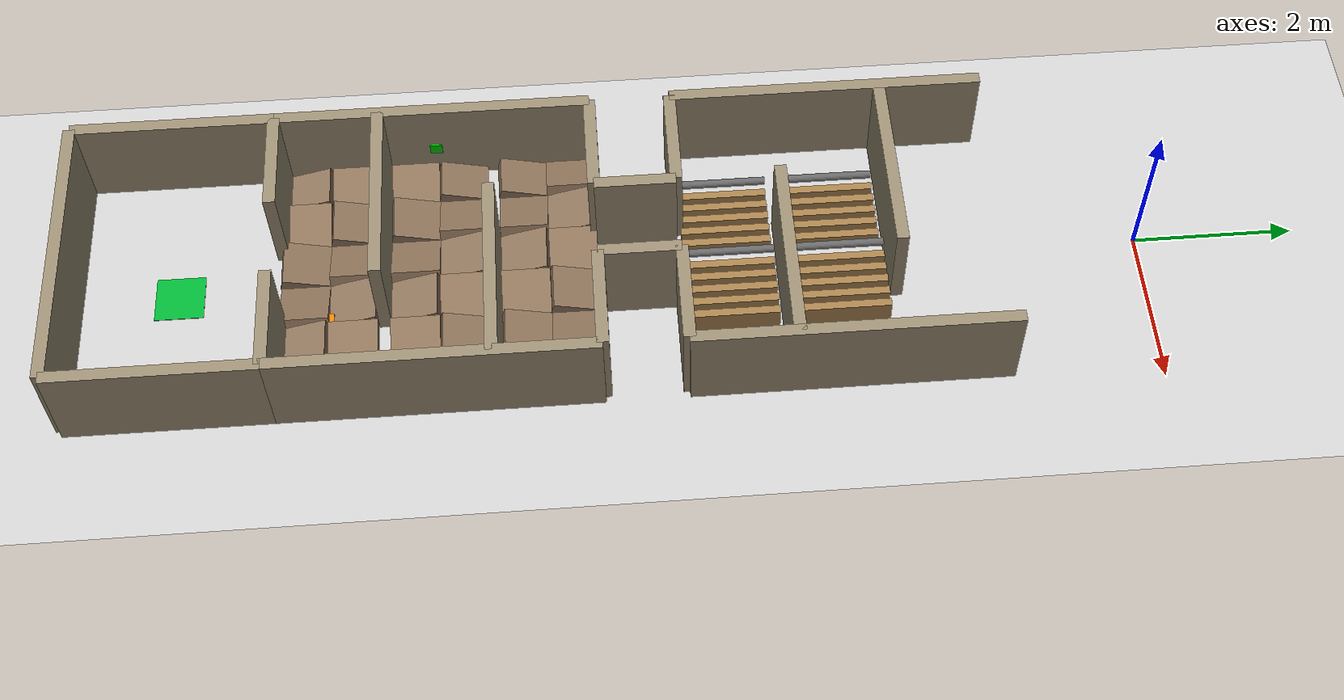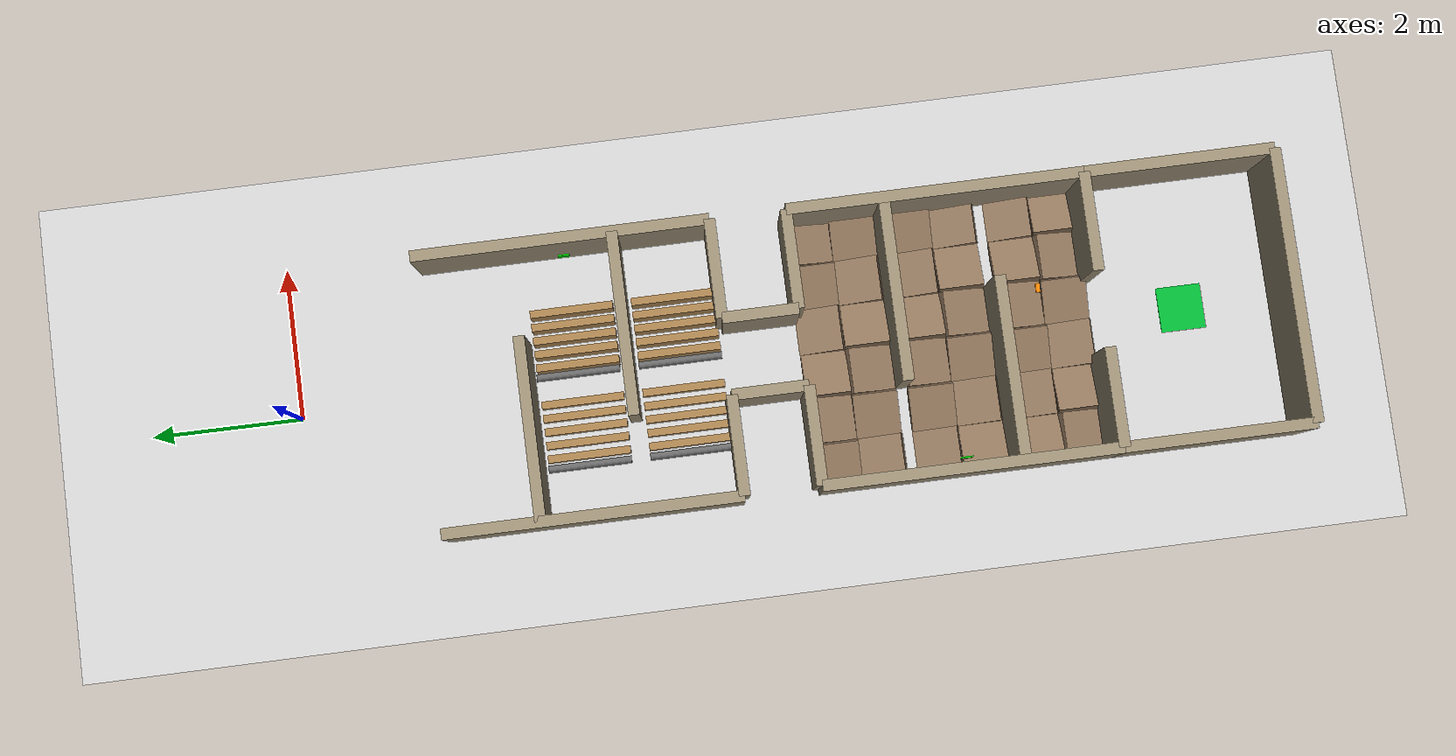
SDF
<sdf version="1.6">
 <world name="lrc_2026">
  <model name="ground_plane">
   <static>true</static>
   <link name="link">
    <collision name="collision">
     <geometry><plane><normal>0 0 1</normal><size>50 50</size></plane></geometry>
    </collision>
    <visual name="visual">
     <geometry><plane><normal>0 0 1</normal><size>50 50</size></plane></geometry>
     <material><ambient>0.8 0.8 0.8 1</ambient><diffuse>0.8 0.8 0.8 1</diffuse></material>
    </visual>
   </link>
  </model>
  <model name="LA_S_a">
   <static>true</static>
   <pose>-1.1500 -10.6000 0.6000 0.0000 0.0000 0.0000</pose>
   <link name="link">
    <collision name="col"><geometry><box><size>1.3000 0.1500 1.2000</size></box></geometry></collision>
    <visual name="vis">
     <geometry><box><size>1.3000 0.1500 1.2000</size></box></geometry>
     <material><ambient>0.6 0.55 0.45 1.0</ambient><diffuse>0.6 0.55 0.45 1.0</diffuse></material>
    </visual>
   </link>
  </model>
  <model name="LA_S_b">
   <static>true</static>
   <pose>1.1500 -10.6000 0.6000 0.0000 0.0000 0.0000</pose>
   <link name="link">
    <collision name="col"><geometry><box><size>1.3000 0.1500 1.2000</size></box></geometry></collision>
    <visual name="vis">
     <geometry><box><size>1.3000 0.1500 1.2000</size></box></geometry>
     <material><ambient>0.6 0.55 0.45 1.0</ambient><diffuse>0.6 0.55 0.45 1.0</diffuse></material>
    </visual>
   </link>
  </model>
  <model name="LA_N_a">
   <static>true</static>
   <pose>-1.1500 -6.7000 0.6000 0.0000 0.0000 0.0000</pose>
   <link name="link">
    <collision name="col"><geometry><box><size>1.3000 0.1500 1.2000</size></box></geometry></collision>
    <visual name="vis">
     <geometry><box><size>1.3000 0.1500 1.2000</size></box></geometry>
     <material><ambient>0.6 0.55 0.45 1.0</ambient><diffuse>0.6 0.55 0.45 1.0</diffuse></material>
    </visual>
   </link>
  </model>
  <model name="LA_N_b">
   <static>true</static>
   <pose>1.1500 -6.7000 0.6000 0.0000 0.0000 0.0000</pose>
   <link name="link">
    <collision name="col"><geometry><box><size>1.3000 0.1500 1.2000</size></box></geometry></collision>
    <visual name="vis">
     <geometry><box><size>1.3000 0.1500 1.2000</size></box></geometry>
     <material><ambient>0.6 0.55 0.45 1.0</ambient><diffuse>0.6 0.55 0.45 1.0</diffuse></material>
    </visual>
   </link>
  </model>
  <model name="LA_W">
   <static>true</static>
   <pose>-1.8000 -8.6500 0.6000 0.0000 0.0000 0.0000</pose>
   <link name="link">
    <collision name="col"><geometry><box><size>0.1500 3.9000 1.2000</size></box></geometry></collision>
    <visual name="vis">
     <geometry><box><size>0.1500 3.9000 1.2000</size></box></geometry>
     <material><ambient>0.6 0.55 0.45 1.0</ambient><diffuse>0.6 0.55 0.45 1.0</diffuse></material>
    </visual>
   </link>
  </model>
  <model name="LA_E">
   <static>true</static>
   <pose>1.8000 -8.6500 0.6000 0.0000 0.0000 0.0000</pose>
   <link name="link">
    <collision name="col"><geometry><box><size>0.1500 3.9000 1.2000</size></box></geometry></collision>
    <visual name="vis">
     <geometry><box><size>0.1500 3.9000 1.2000</size></box></geometry>
     <material><ambient>0.6 0.55 0.45 1.0</ambient><diffuse>0.6 0.55 0.45 1.0</diffuse></material>
    </visual>
   </link>
  </model>
  <model name="LA_d0">
   <static>true</static>
   <pose>-0.6000 -9.3250 0.6000 0.0000 0.0000 0.0000</pose>
   <link name="link">
    <collision name="col"><geometry><box><size>2.4000 0.1500 1.2000</size></box></geometry></collision>
    <visual name="vis">
     <geometry><box><size>2.4000 0.1500 1.2000</size></box></geometry>
     <material><ambient>0.6 0.55 0.45 1.0</ambient><diffuse>0.6 0.55 0.45 1.0</diffuse></material>
    </visual>
   </link>
  </model>
  <model name="LA_d1">
   <static>true</static>
   <pose>0.6000 -7.9750 0.6000 0.0000 0.0000 0.0000</pose>
   <link name="link">
    <collision name="col"><geometry><box><size>2.4000 0.1500 1.2000</size></box></geometry></collision>
    <visual name="vis">
     <geometry><box><size>2.4000 0.1500 1.2000</size></box></geometry>
     <material><ambient>0.6 0.55 0.45 1.0</ambient><diffuse>0.6 0.55 0.45 1.0</diffuse></material>
    </visual>
   </link>
  </model>
  <model name="ramp_0_0_0">
   <static>true</static>
   <pose>-1.5000 -10.3000 0.0800 0.2618 0 0</pose>
   <link name="link">
    <collision name="col"><geometry><box><size>0.6000 0.6000 0.1600</size></box></geometry></collision>
    <visual name="vis">
     <geometry><box><size>0.6000 0.6000 0.1600</size></box></geometry>
     <material><ambient>0.55 0.45 0.35 1.0</ambient><diffuse>0.55 0.45 0.35 1.0</diffuse></material>
    </visual>
   </link>
  </model>
  <model name="ramp_0_0_1">
   <static>true</static>
   <pose>-0.9000 -10.3000 0.0800 0 0.2618 0</pose>
   <link name="link">
    <collision name="col"><geometry><box><size>0.6000 0.6000 0.1600</size></box></geometry></collision>
    <visual name="vis">
     <geometry><box><size>0.6000 0.6000 0.1600</size></box></geometry>
     <material><ambient>0.55 0.45 0.35 1.0</ambient><diffuse>0.55 0.45 0.35 1.0</diffuse></material>
    </visual>
   </link>
  </model>
  <model name="ramp_0_0_2">
   <static>true</static>
   <pose>-0.3000 -10.3000 0.0800 -0.2618 0 0</pose>
   <link name="link">
    <collision name="col"><geometry><box><size>0.6000 0.6000 0.1600</size></box></geometry></collision>
    <visual name="vis">
     <geometry><box><size>0.6000 0.6000 0.1600</size></box></geometry>
     <material><ambient>0.55 0.45 0.35 1.0</ambient><diffuse>0.55 0.45 0.35 1.0</diffuse></material>
    </visual>
   </link>
  </model>
  <model name="ramp_0_0_3">
   <static>true</static>
   <pose>0.3000 -10.3000 0.0800 0 -0.2618 0</pose>
   <link name="link">
    <collision name="col"><geometry><box><size>0.6000 0.6000 0.1600</size></box></geometry></collision>
    <visual name="vis">
     <geometry><box><size>0.6000 0.6000 0.1600</size></box></geometry>
     <material><ambient>0.55 0.45 0.35 1.0</ambient><diffuse>0.55 0.45 0.35 1.0</diffuse></material>
    </visual>
   </link>
  </model>
  <model name="ramp_0_0_4">
   <static>true</static>
   <pose>0.9000 -10.3000 0.0800 0.2618 0 0</pose>
   <link name="link">
    <collision name="col"><geometry><box><size>0.6000 0.6000 0.1600</size></box></geometry></collision>
    <visual name="vis">
     <geometry><box><size>0.6000 0.6000 0.1600</size></box></geometry>
     <material><ambient>0.55 0.45 0.35 1.0</ambient><diffuse>0.55 0.45 0.35 1.0</diffuse></material>
    </visual>
   </link>
  </model>
  <model name="ramp_0_0_5">
   <static>true</static>
   <pose>1.5000 -10.3000 0.0800 0 0.2618 0</pose>
   <link name="link">
    <collision name="col"><geometry><box><size>0.6000 0.6000 0.1600</size></box></geometry></collision>
    <visual name="vis">
     <geometry><box><size>0.6000 0.6000 0.1600</size></box></geometry>
     <material><ambient>0.55 0.45 0.35 1.0</ambient><diffuse>0.55 0.45 0.35 1.0</diffuse></material>
    </visual>
   </link>
  </model>
  <model name="ramp_0_1_0">
   <static>true</static>
   <pose>-1.5000 -9.7000 0.0800 0 0.2618 0</pose>
   <link name="link">
    <collision name="col"><geometry><box><size>0.6000 0.6000 0.1600</size></box></geometry></collision>
    <visual name="vis">
     <geometry><box><size>0.6000 0.6000 0.1600</size></box></geometry>
     <material><ambient>0.55 0.45 0.35 1.0</ambient><diffuse>0.55 0.45 0.35 1.0</diffuse></material>
    </visual>
   </link>
  </model>
  <model name="ramp_0_1_1">
   <static>true</static>
   <pose>-0.9000 -9.7000 0.0800 -0.2618 0 0</pose>
   <link name="link">
    <collision name="col"><geometry><box><size>0.6000 0.6000 0.1600</size></box></geometry></collision>
    <visual name="vis">
     <geometry><box><size>0.6000 0.6000 0.1600</size></box></geometry>
     <material><ambient>0.55 0.45 0.35 1.0</ambient><diffuse>0.55 0.45 0.35 1.0</diffuse></material>
    </visual>
   </link>
  </model>
  <model name="ramp_0_1_2">
   <static>true</static>
   <pose>-0.3000 -9.7000 0.0800 0 -0.2618 0</pose>
   <link name="link">
    <collision name="col"><geometry><box><size>0.6000 0.6000 0.1600</size></box></geometry></collision>
    <visual name="vis">
     <geometry><box><size>0.6000 0.6000 0.1600</size></box></geometry>
     <material><ambient>0.55 0.45 0.35 1.0</ambient><diffuse>0.55 0.45 0.35 1.0</diffuse></material>
    </visual>
   </link>
  </model>
  <model name="ramp_0_1_3">
   <static>true</static>
   <pose>0.3000 -9.7000 0.0800 0.2618 0 0</pose>
   <link name="link">
    <collision name="col"><geometry><box><size>0.6000 0.6000 0.1600</size></box></geometry></collision>
    <visual name="vis">
     <geometry><box><size>0.6000 0.6000 0.1600</size></box></geometry>
     <material><ambient>0.55 0.45 0.35 1.0</ambient><diffuse>0.55 0.45 0.35 1.0</diffuse></material>
    </visual>
   </link>
  </model>
  <model name="ramp_0_1_4">
   <static>true</static>
   <pose>0.9000 -9.7000 0.0800 0 0.2618 0</pose>
   <link name="link">
    <collision name="col"><geometry><box><size>0.6000 0.6000 0.1600</size></box></geometry></collision>
    <visual name="vis">
     <geometry><box><size>0.6000 0.6000 0.1600</size></box></geometry>
     <material><ambient>0.55 0.45 0.35 1.0</ambient><diffuse>0.55 0.45 0.35 1.0</diffuse></material>
    </visual>
   </link>
  </model>
  <model name="ramp_0_1_5">
   <static>true</static>
   <pose>1.5000 -9.7000 0.0800 -0.2618 0 0</pose>
   <link name="link">
    <collision name="col"><geometry><box><size>0.6000 0.6000 0.1600</size></box></geometry></collision>
    <visual name="vis">
     <geometry><box><size>0.6000 0.6000 0.1600</size></box></geometry>
     <material><ambient>0.55 0.45 0.35 1.0</ambient><diffuse>0.55 0.45 0.35 1.0</diffuse></material>
    </visual>
   </link>
  </model>
  <model name="ramp_1_0_0">
   <static>true</static>
   <pose>-1.5000 -8.9500 0.0800 0 0.2618 0</pose>
   <link name="link">
    <collision name="col"><geometry><box><size>0.6000 0.6000 0.1600</size></box></geometry></collision>
    <visual name="vis">
     <geometry><box><size>0.6000 0.6000 0.1600</size></box></geometry>
     <material><ambient>0.55 0.45 0.35 1.0</ambient><diffuse>0.55 0.45 0.35 1.0</diffuse></material>
    </visual>
   </link>
  </model>
  <model name="ramp_1_0_1">
   <static>true</static>
   <pose>-0.9000 -8.9500 0.0800 -0.2618 0 0</pose>
   <link name="link">
    <collision name="col"><geometry><box><size>0.6000 0.6000 0.1600</size></box></geometry></collision>
    <visual name="vis">
     <geometry><box><size>0.6000 0.6000 0.1600</size></box></geometry>
     <material><ambient>0.55 0.45 0.35 1.0</ambient><diffuse>0.55 0.45 0.35 1.0</diffuse></material>
    </visual>
   </link>
  </model>
  <model name="ramp_1_0_2">
   <static>true</static>
   <pose>-0.3000 -8.9500 0.0800 0 -0.2618 0</pose>
   <link name="link">
    <collision name="col"><geometry><box><size>0.6000 0.6000 0.1600</size></box></geometry></collision>
    <visual name="vis">
     <geometry><box><size>0.6000 0.6000 0.1600</size></box></geometry>
     <material><ambient>0.55 0.45 0.35 1.0</ambient><diffuse>0.55 0.45 0.35 1.0</diffuse></material>
    </visual>
   </link>
  </model>
  <model name="ramp_1_0_3">
   <static>true</static>
   <pose>0.3000 -8.9500 0.0800 0.2618 0 0</pose>
   <link name="link">
    <collision name="col"><geometry><box><size>0.6000 0.6000 0.1600</size></box></geometry></collision>
    <visual name="vis">
     <geometry><box><size>0.6000 0.6000 0.1600</size></box></geometry>
     <material><ambient>0.55 0.45 0.35 1.0</ambient><diffuse>0.55 0.45 0.35 1.0</diffuse></material>
    </visual>
   </link>
  </model>
  <model name="ramp_1_0_4">
   <static>true</static>
   <pose>0.9000 -8.9500 0.0800 0 0.2618 0</pose>
   <link name="link">
    <collision name="col"><geometry><box><size>0.6000 0.6000 0.1600</size></box></geometry></collision>
    <visual name="vis">
     <geometry><box><size>0.6000 0.6000 0.1600</size></box></geometry>
     <material><ambient>0.55 0.45 0.35 1.0</ambient><diffuse>0.55 0.45 0.35 1.0</diffuse></material>
    </visual>
   </link>
  </model>
  <model name="ramp_1_0_5">
   <static>true</static>
   <pose>1.5000 -8.9500 0.0800 -0.2618 0 0</pose>
   <link name="link">
    <collision name="col"><geometry><box><size>0.6000 0.6000 0.1600</size></box></geometry></collision>
    <visual name="vis">
     <geometry><box><size>0.6000 0.6000 0.1600</size></box></geometry>
     <material><ambient>0.55 0.45 0.35 1.0</ambient><diffuse>0.55 0.45 0.35 1.0</diffuse></material>
    </visual>
   </link>
  </model>
  <model name="ramp_1_1_0">
   <static>true</static>
   <pose>-1.5000 -8.3500 0.0800 -0.2618 0 0</pose>
   <link name="link">
    <collision name="col"><geometry><box><size>0.6000 0.6000 0.1600</size></box></geometry></collision>
    <visual name="vis">
     <geometry><box><size>0.6000 0.6000 0.1600</size></box></geometry>
     <material><ambient>0.55 0.45 0.35 1.0</ambient><diffuse>0.55 0.45 0.35 1.0</diffuse></material>
    </visual>
   </link>
  </model>
  <model name="ramp_1_1_1">
   <static>true</static>
   <pose>-0.9000 -8.3500 0.0800 0 -0.2618 0</pose>
   <link name="link">
    <collision name="col"><geometry><box><size>0.6000 0.6000 0.1600</size></box></geometry></collision>
    <visual name="vis">
     <geometry><box><size>0.6000 0.6000 0.1600</size></box></geometry>
     <material><ambient>0.55 0.45 0.35 1.0</ambient><diffuse>0.55 0.45 0.35 1.0</diffuse></material>
    </visual>
   </link>
  </model>
  <model name="ramp_1_1_2">
   <static>true</static>
   <pose>-0.3000 -8.3500 0.0800 0.2618 0 0</pose>
   <link name="link">
    <collision name="col"><geometry><box><size>0.6000 0.6000 0.1600</size></box></geometry></collision>
    <visual name="vis">
     <geometry><box><size>0.6000 0.6000 0.1600</size></box></geometry>
     <material><ambient>0.55 0.45 0.35 1.0</ambient><diffuse>0.55 0.45 0.35 1.0</diffuse></material>
    </visual>
   </link>
  </model>
  <model name="ramp_1_1_3">
   <static>true</static>
   <pose>0.3000 -8.3500 0.0800 0 0.2618 0</pose>
   <link name="link">
    <collision name="col"><geometry><box><size>0.6000 0.6000 0.1600</size></box></geometry></collision>
    <visual name="vis">
     <geometry><box><size>0.6000 0.6000 0.1600</size></box></geometry>
     <material><ambient>0.55 0.45 0.35 1.0</ambient><diffuse>0.55 0.45 0.35 1.0</diffuse></material>
    </visual>
   </link>
  </model>
  <model name="ramp_1_1_4">
   <static>true</static>
   <pose>0.9000 -8.3500 0.0800 -0.2618 0 0</pose>
   <link name="link">
    <collision name="col"><geometry><box><size>0.6000 0.6000 0.1600</size></box></geometry></collision>
    <visual name="vis">
     <geometry><box><size>0.6000 0.6000 0.1600</size></box></geometry>
     <material><ambient>0.55 0.45 0.35 1.0</ambient><diffuse>0.55 0.45 0.35 1.0</diffuse></material>
    </visual>
   </link>
  </model>
  <model name="ramp_1_1_5">
   <static>true</static>
   <pose>1.5000 -8.3500 0.0800 0 -0.2618 0</pose>
   <link name="link">
    <collision name="col"><geometry><box><size>0.6000 0.6000 0.1600</size></box></geometry></collision>
    <visual name="vis">
     <geometry><box><size>0.6000 0.6000 0.1600</size></box></geometry>
     <material><ambient>0.55 0.45 0.35 1.0</ambient><diffuse>0.55 0.45 0.35 1.0</diffuse></material>
    </visual>
   </link>
  </model>
  <model name="ramp_2_0_0">
   <static>true</static>
   <pose>-1.5000 -7.6000 0.0800 -0.2618 0 0</pose>
   <link name="link">
    <collision name="col"><geometry><box><size>0.6000 0.6000 0.1600</size></box></geometry></collision>
    <visual name="vis">
     <geometry><box><size>0.6000 0.6000 0.1600</size></box></geometry>
     <material><ambient>0.55 0.45 0.35 1.0</ambient><diffuse>0.55 0.45 0.35 1.0</diffuse></material>
    </visual>
   </link>
  </model>
  <model name="ramp_2_0_1">
   <static>true</static>
   <pose>-0.9000 -7.6000 0.0800 0 -0.2618 0</pose>
   <link name="link">
    <collision name="col"><geometry><box><size>0.6000 0.6000 0.1600</size></box></geometry></collision>
    <visual name="vis">
     <geometry><box><size>0.6000 0.6000 0.1600</size></box></geometry>
     <material><ambient>0.55 0.45 0.35 1.0</ambient><diffuse>0.55 0.45 0.35 1.0</diffuse></material>
    </visual>
   </link>
  </model>
  <model name="ramp_2_0_2">
   <static>true</static>
   <pose>-0.3000 -7.6000 0.0800 0.2618 0 0</pose>
   <link name="link">
    <collision name="col"><geometry><box><size>0.6000 0.6000 0.1600</size></box></geometry></collision>
    <visual name="vis">
     <geometry><box><size>0.6000 0.6000 0.1600</size></box></geometry>
     <material><ambient>0.55 0.45 0.35 1.0</ambient><diffuse>0.55 0.45 0.35 1.0</diffuse></material>
    </visual>
   </link>
  </model>
  <model name="ramp_2_0_3">
   <static>true</static>
   <pose>0.3000 -7.6000 0.0800 0 0.2618 0</pose>
   <link name="link">
    <collision name="col"><geometry><box><size>0.6000 0.6000 0.1600</size></box></geometry></collision>
    <visual name="vis">
     <geometry><box><size>0.6000 0.6000 0.1600</size></box></geometry>
     <material><ambient>0.55 0.45 0.35 1.0</ambient><diffuse>0.55 0.45 0.35 1.0</diffuse></material>
    </visual>
   </link>
  </model>
  <model name="ramp_2_0_4">
   <static>true</static>
   <pose>0.9000 -7.6000 0.0800 -0.2618 0 0</pose>
   <link name="link">
    <collision name="col"><geometry><box><size>0.6000 0.6000 0.1600</size></box></geometry></collision>
    <visual name="vis">
     <geometry><box><size>0.6000 0.6000 0.1600</size></box></geometry>
     <material><ambient>0.55 0.45 0.35 1.0</ambient><diffuse>0.55 0.45 0.35 1.0</diffuse></material>
    </visual>
   </link>
  </model>
  <model name="ramp_2_0_5">
   <static>true</static>
   <pose>1.5000 -7.6000 0.0800 0 -0.2618 0</pose>
   <link name="link">
    <collision name="col"><geometry><box><size>0.6000 0.6000 0.1600</size></box></geometry></collision>
    <visual name="vis">
     <geometry><box><size>0.6000 0.6000 0.1600</size></box></geometry>
     <material><ambient>0.55 0.45 0.35 1.0</ambient><diffuse>0.55 0.45 0.35 1.0</diffuse></material>
    </visual>
   </link>
  </model>
  <model name="ramp_2_1_0">
   <static>true</static>
   <pose>-1.5000 -7.0000 0.0800 0 -0.2618 0</pose>
   <link name="link">
    <collision name="col"><geometry><box><size>0.6000 0.6000 0.1600</size></box></geometry></collision>
    <visual name="vis">
     <geometry><box><size>0.6000 0.6000 0.1600</size></box></geometry>
     <material><ambient>0.55 0.45 0.35 1.0</ambient><diffuse>0.55 0.45 0.35 1.0</diffuse></material>
    </visual>
   </link>
  </model>
  <model name="ramp_2_1_1">
   <static>true</static>
   <pose>-0.9000 -7.0000 0.0800 0.2618 0 0</pose>
   <link name="link">
    <collision name="col"><geometry><box><size>0.6000 0.6000 0.1600</size></box></geometry></collision>
    <visual name="vis">
     <geometry><box><size>0.6000 0.6000 0.1600</size></box></geometry>
     <material><ambient>0.55 0.45 0.35 1.0</ambient><diffuse>0.55 0.45 0.35 1.0</diffuse></material>
    </visual>
   </link>
  </model>
  <model name="ramp_2_1_2">
   <static>true</static>
   <pose>-0.3000 -7.0000 0.0800 0 0.2618 0</pose>
   <link name="link">
    <collision name="col"><geometry><box><size>0.6000 0.6000 0.1600</size></box></geometry></collision>
    <visual name="vis">
     <geometry><box><size>0.6000 0.6000 0.1600</size></box></geometry>
     <material><ambient>0.55 0.45 0.35 1.0</ambient><diffuse>0.55 0.45 0.35 1.0</diffuse></material>
    </visual>
   </link>
  </model>
  <model name="ramp_2_1_3">
   <static>true</static>
   <pose>0.3000 -7.0000 0.0800 -0.2618 0 0</pose>
   <link name="link">
    <collision name="col"><geometry><box><size>0.6000 0.6000 0.1600</size></box></geometry></collision>
    <visual name="vis">
     <geometry><box><size>0.6000 0.6000 0.1600</size></box></geometry>
     <material><ambient>0.55 0.45 0.35 1.0</ambient><diffuse>0.55 0.45 0.35 1.0</diffuse></material>
    </visual>
   </link>
  </model>
  <model name="ramp_2_1_4">
   <static>true</static>
   <pose>0.9000 -7.0000 0.0800 0 -0.2618 0</pose>
   <link name="link">
    <collision name="col"><geometry><box><size>0.6000 0.6000 0.1600</size></box></geometry></collision>
    <visual name="vis">
     <geometry><box><size>0.6000 0.6000 0.1600</size></box></geometry>
     <material><ambient>0.55 0.45 0.35 1.0</ambient><diffuse>0.55 0.45 0.35 1.0</diffuse></material>
    </visual>
   </link>
  </model>
  <model name="ramp_2_1_5">
   <static>true</static>
   <pose>1.5000 -7.0000 0.0800 0.2618 0 0</pose>
   <link name="link">
    <collision name="col"><geometry><box><size>0.6000 0.6000 0.1600</size></box></geometry></collision>
    <visual name="vis">
     <geometry><box><size>0.6000 0.6000 0.1600</size></box></geometry>
     <material><ambient>0.55 0.45 0.35 1.0</ambient><diffuse>0.55 0.45 0.35 1.0</diffuse></material>
    </visual>
   </link>
  </model>
  <model name="qr_A">
   <static>true</static>
   <pose>-1.6500 -8.6500 0.6000 0.0000 0.0000 0.0000</pose>
   <link name="link">
    <collision name="col"><geometry><box><size>0.0200 0.1500 0.1500</size></box></geometry></collision>
    <visual name="vis">
     <geometry><box><size>0.0200 0.1500 0.1500</size></box></geometry>
     <material><ambient>0.0 0.8 0.0 1.0</ambient><diffuse>0.0 0.8 0.0 1.0</diffuse></material>
    </visual>
   </link>
  </model>
  <model name="haz_A">
   <static>true</static>
   <pose>0.5000 -10.0000 0.0600 0.0000 0.0000 0.0000</pose>
   <link name="link">
    <collision name="col"><geometry><box><size>0.1200 0.1200 0.1200</size></box></geometry></collision>
    <visual name="vis">
     <geometry><box><size>0.1200 0.1200 0.1200</size></box></geometry>
     <material><ambient>1.0 0.5 0.0 1.0</ambient><diffuse>1.0 0.5 0.0 1.0</diffuse></material>
    </visual>
   </link>
  </model>
  <model name="LB_S_a">
   <static>true</static>
   <pose>-1.1500 -5.7000 0.6000 0.0000 0.0000 0.0000</pose>
   <link name="link">
    <collision name="col"><geometry><box><size>1.3000 0.1500 1.2000</size></box></geometry></collision>
    <visual name="vis">
     <geometry><box><size>1.3000 0.1500 1.2000</size></box></geometry>
     <material><ambient>0.6 0.55 0.45 1.0</ambient><diffuse>0.6 0.55 0.45 1.0</diffuse></material>
    </visual>
   </link>
  </model>
  <model name="LB_S_b">
   <static>true</static>
   <pose>1.1500 -5.7000 0.6000 0.0000 0.0000 0.0000</pose>
   <link name="link">
    <collision name="col"><geometry><box><size>1.3000 0.1500 1.2000</size></box></geometry></collision>
    <visual name="vis">
     <geometry><box><size>1.3000 0.1500 1.2000</size></box></geometry>
     <material><ambient>0.6 0.55 0.45 1.0</ambient><diffuse>0.6 0.55 0.45 1.0</diffuse></material>
    </visual>
   </link>
  </model>
  <model name="LB_W">
   <static>true</static>
   <pose>-1.8000 -3.7500 0.6000 0.0000 0.0000 0.0000</pose>
   <link name="link">
    <collision name="col"><geometry><box><size>0.1500 3.9000 1.2000</size></box></geometry></collision>
    <visual name="vis">
     <geometry><box><size>0.1500 3.9000 1.2000</size></box></geometry>
     <material><ambient>0.6 0.55 0.45 1.0</ambient><diffuse>0.6 0.55 0.45 1.0</diffuse></material>
    </visual>
   </link>
  </model>
  <model name="LB_E">
   <static>true</static>
   <pose>1.8000 -3.7500 0.6000 0.0000 0.0000 0.0000</pose>
   <link name="link">
    <collision name="col"><geometry><box><size>0.1500 3.9000 1.2000</size></box></geometry></collision>
    <visual name="vis">
     <geometry><box><size>0.1500 3.9000 1.2000</size></box></geometry>
     <material><ambient>0.6 0.55 0.45 1.0</ambient><diffuse>0.6 0.55 0.45 1.0</diffuse></material>
    </visual>
   </link>
  </model>
  <model name="LB_d0">
   <static>true</static>
   <pose>0.6000 -4.4250 0.6000 0.0000 0.0000 0.0000</pose>
   <link name="link">
    <collision name="col"><geometry><box><size>2.4000 0.1500 1.2000</size></box></geometry></collision>
    <visual name="vis">
     <geometry><box><size>2.4000 0.1500 1.2000</size></box></geometry>
     <material><ambient>0.6 0.55 0.45 1.0</ambient><diffuse>0.6 0.55 0.45 1.0</diffuse></material>
    </visual>
   </link>
  </model>
  <model name="LB_d1">
   <static>true</static>
   <pose>-0.6000 -3.0750 0.6000 0.0000 0.0000 0.0000</pose>
   <link name="link">
    <collision name="col"><geometry><box><size>2.4000 0.1500 1.2000</size></box></geometry></collision>
    <visual name="vis">
     <geometry><box><size>2.4000 0.1500 1.2000</size></box></geometry>
     <material><ambient>0.6 0.55 0.45 1.0</ambient><diffuse>0.6 0.55 0.45 1.0</diffuse></material>
    </visual>
   </link>
  </model>
  <model name="plt_0_0_0">
   <static>true</static>
   <pose>-0.9600 -5.1000 0.1000 0.0000 0.0000 0.0000</pose>
   <link name="link">
    <collision name="col"><geometry><box><size>0.1000 1.1000 0.2000</size></box></geometry></collision>
    <visual name="vis">
     <geometry><box><size>0.1000 1.1000 0.2000</size></box></geometry>
     <material><ambient>0.65 0.5 0.3 1.0</ambient><diffuse>0.65 0.5 0.3 1.0</diffuse></material>
    </visual>
   </link>
  </model>
  <model name="plt_0_0_1">
   <static>true</static>
   <pose>-0.7800 -5.1000 0.1000 0.0000 0.0000 0.0000</pose>
   <link name="link">
    <collision name="col"><geometry><box><size>0.1000 1.1000 0.2000</size></box></geometry></collision>
    <visual name="vis">
     <geometry><box><size>0.1000 1.1000 0.2000</size></box></geometry>
     <material><ambient>0.65 0.5 0.3 1.0</ambient><diffuse>0.65 0.5 0.3 1.0</diffuse></material>
    </visual>
   </link>
  </model>
  <model name="plt_0_0_2">
   <static>true</static>
   <pose>-0.6000 -5.1000 0.1000 0.0000 0.0000 0.0000</pose>
   <link name="link">
    <collision name="col"><geometry><box><size>0.1000 1.1000 0.2000</size></box></geometry></collision>
    <visual name="vis">
     <geometry><box><size>0.1000 1.1000 0.2000</size></box></geometry>
     <material><ambient>0.65 0.5 0.3 1.0</ambient><diffuse>0.65 0.5 0.3 1.0</diffuse></material>
    </visual>
   </link>
  </model>
  <model name="plt_0_0_3">
   <static>true</static>
   <pose>-0.4200 -5.1000 0.1000 0.0000 0.0000 0.0000</pose>
   <link name="link">
    <collision name="col"><geometry><box><size>0.1000 1.1000 0.2000</size></box></geometry></collision>
    <visual name="vis">
     <geometry><box><size>0.1000 1.1000 0.2000</size></box></geometry>
     <material><ambient>0.65 0.5 0.3 1.0</ambient><diffuse>0.65 0.5 0.3 1.0</diffuse></material>
    </visual>
   </link>
  </model>
  <model name="plt_0_0_4">
   <static>true</static>
   <pose>-0.2400 -5.1000 0.1000 0.0000 0.0000 0.0000</pose>
   <link name="link">
    <collision name="col"><geometry><box><size>0.1000 1.1000 0.2000</size></box></geometry></collision>
    <visual name="vis">
     <geometry><box><size>0.1000 1.1000 0.2000</size></box></geometry>
     <material><ambient>0.65 0.5 0.3 1.0</ambient><diffuse>0.65 0.5 0.3 1.0</diffuse></material>
    </visual>
   </link>
  </model>
  <model name="pipe_0_0">
   <static>true</static>
   <pose>-1.1000 -5.1000 0.2500 1.5708 0 0</pose>
   <link name="link">
    <collision name="col">
     <geometry><cylinder><radius>0.05</radius><length>1.1</length></cylinder></geometry>
    </collision>
    <visual name="vis">
     <geometry><cylinder><radius>0.05</radius><length>1.1</length></cylinder></geometry>
     <material><ambient>0.4 0.4 0.4 1.0</ambient><diffuse>0.4 0.4 0.4 1.0</diffuse></material>
    </visual>
   </link>
  </model>
  <model name="plt_0_1_0">
   <static>true</static>
   <pose>0.2400 -5.1000 0.2000 0.0000 0.0000 0.0000</pose>
   <link name="link">
    <collision name="col"><geometry><box><size>0.1000 1.1000 0.4000</size></box></geometry></collision>
    <visual name="vis">
     <geometry><box><size>0.1000 1.1000 0.4000</size></box></geometry>
     <material><ambient>0.65 0.5 0.3 1.0</ambient><diffuse>0.65 0.5 0.3 1.0</diffuse></material>
    </visual>
   </link>
  </model>
  <model name="plt_0_1_1">
   <static>true</static>
   <pose>0.4200 -5.1000 0.2000 0.0000 0.0000 0.0000</pose>
   <link name="link">
    <collision name="col"><geometry><box><size>0.1000 1.1000 0.4000</size></box></geometry></collision>
    <visual name="vis">
     <geometry><box><size>0.1000 1.1000 0.4000</size></box></geometry>
     <material><ambient>0.65 0.5 0.3 1.0</ambient><diffuse>0.65 0.5 0.3 1.0</diffuse></material>
    </visual>
   </link>
  </model>
  <model name="plt_0_1_2">
   <static>true</static>
   <pose>0.6000 -5.1000 0.2000 0.0000 0.0000 0.0000</pose>
   <link name="link">
    <collision name="col"><geometry><box><size>0.1000 1.1000 0.4000</size></box></geometry></collision>
    <visual name="vis">
     <geometry><box><size>0.1000 1.1000 0.4000</size></box></geometry>
     <material><ambient>0.65 0.5 0.3 1.0</ambient><diffuse>0.65 0.5 0.3 1.0</diffuse></material>
    </visual>
   </link>
  </model>
  <model name="plt_0_1_3">
   <static>true</static>
   <pose>0.7800 -5.1000 0.2000 0.0000 0.0000 0.0000</pose>
   <link name="link">
    <collision name="col"><geometry><box><size>0.1000 1.1000 0.4000</size></box></geometry></collision>
    <visual name="vis">
     <geometry><box><size>0.1000 1.1000 0.4000</size></box></geometry>
     <material><ambient>0.65 0.5 0.3 1.0</ambient><diffuse>0.65 0.5 0.3 1.0</diffuse></material>
    </visual>
   </link>
  </model>
  <model name="plt_0_1_4">
   <static>true</static>
   <pose>0.9600 -5.1000 0.2000 0.0000 0.0000 0.0000</pose>
   <link name="link">
    <collision name="col"><geometry><box><size>0.1000 1.1000 0.4000</size></box></geometry></collision>
    <visual name="vis">
     <geometry><box><size>0.1000 1.1000 0.4000</size></box></geometry>
     <material><ambient>0.65 0.5 0.3 1.0</ambient><diffuse>0.65 0.5 0.3 1.0</diffuse></material>
    </visual>
   </link>
  </model>
  <model name="pipe_0_1">
   <static>true</static>
   <pose>0.1000 -5.1000 0.4500 1.5708 0 0</pose>
   <link name="link">
    <collision name="col">
     <geometry><cylinder><radius>0.05</radius><length>1.1</length></cylinder></geometry>
    </collision>
    <visual name="vis">
     <geometry><cylinder><radius>0.05</radius><length>1.1</length></cylinder></geometry>
     <material><ambient>0.4 0.4 0.4 1.0</ambient><diffuse>0.4 0.4 0.4 1.0</diffuse></material>
    </visual>
   </link>
  </model>
  <model name="plt_1_0_0">
   <static>true</static>
   <pose>-0.9600 -3.7500 0.1000 0.0000 0.0000 0.0000</pose>
   <link name="link">
    <collision name="col"><geometry><box><size>0.1000 1.1000 0.2000</size></box></geometry></collision>
    <visual name="vis">
     <geometry><box><size>0.1000 1.1000 0.2000</size></box></geometry>
     <material><ambient>0.65 0.5 0.3 1.0</ambient><diffuse>0.65 0.5 0.3 1.0</diffuse></material>
    </visual>
   </link>
  </model>
  <model name="plt_1_0_1">
   <static>true</static>
   <pose>-0.7800 -3.7500 0.1000 0.0000 0.0000 0.0000</pose>
   <link name="link">
    <collision name="col"><geometry><box><size>0.1000 1.1000 0.2000</size></box></geometry></collision>
    <visual name="vis">
     <geometry><box><size>0.1000 1.1000 0.2000</size></box></geometry>
     <material><ambient>0.65 0.5 0.3 1.0</ambient><diffuse>0.65 0.5 0.3 1.0</diffuse></material>
    </visual>
   </link>
  </model>
  <model name="plt_1_0_2">
   <static>true</static>
   <pose>-0.6000 -3.7500 0.1000 0.0000 0.0000 0.0000</pose>
   <link name="link">
    <collision name="col"><geometry><box><size>0.1000 1.1000 0.2000</size></box></geometry></collision>
    <visual name="vis">
     <geometry><box><size>0.1000 1.1000 0.2000</size></box></geometry>
     <material><ambient>0.65 0.5 0.3 1.0</ambient><diffuse>0.65 0.5 0.3 1.0</diffuse></material>
    </visual>
   </link>
  </model>
  <model name="plt_1_0_3">
   <static>true</static>
   <pose>-0.4200 -3.7500 0.1000 0.0000 0.0000 0.0000</pose>
   <link name="link">
    <collision name="col"><geometry><box><size>0.1000 1.1000 0.2000</size></box></geometry></collision>
    <visual name="vis">
     <geometry><box><size>0.1000 1.1000 0.2000</size></box></geometry>
     <material><ambient>0.65 0.5 0.3 1.0</ambient><diffuse>0.65 0.5 0.3 1.0</diffuse></material>
    </visual>
   </link>
  </model>
  <model name="plt_1_0_4">
   <static>true</static>
   <pose>-0.2400 -3.7500 0.1000 0.0000 0.0000 0.0000</pose>
   <link name="link">
    <collision name="col"><geometry><box><size>0.1000 1.1000 0.2000</size></box></geometry></collision>
    <visual name="vis">
     <geometry><box><size>0.1000 1.1000 0.2000</size></box></geometry>
     <material><ambient>0.65 0.5 0.3 1.0</ambient><diffuse>0.65 0.5 0.3 1.0</diffuse></material>
    </visual>
   </link>
  </model>
  <model name="pipe_1_0">
   <static>true</static>
   <pose>-1.1000 -3.7500 0.2500 1.5708 0 0</pose>
   <link name="link">
    <collision name="col">
     <geometry><cylinder><radius>0.05</radius><length>1.1</length></cylinder></geometry>
    </collision>
    <visual name="vis">
     <geometry><cylinder><radius>0.05</radius><length>1.1</length></cylinder></geometry>
     <material><ambient>0.4 0.4 0.4 1.0</ambient><diffuse>0.4 0.4 0.4 1.0</diffuse></material>
    </visual>
   </link>
  </model>
  <model name="plt_1_1_0">
   <static>true</static>
   <pose>0.2400 -3.7500 0.2000 0.0000 0.0000 0.0000</pose>
   <link name="link">
    <collision name="col"><geometry><box><size>0.1000 1.1000 0.4000</size></box></geometry></collision>
    <visual name="vis">
     <geometry><box><size>0.1000 1.1000 0.4000</size></box></geometry>
     <material><ambient>0.65 0.5 0.3 1.0</ambient><diffuse>0.65 0.5 0.3 1.0</diffuse></material>
    </visual>
   </link>
  </model>
  <model name="plt_1_1_1">
   <static>true</static>
   <pose>0.4200 -3.7500 0.2000 0.0000 0.0000 0.0000</pose>
   <link name="link">
    <collision name="col"><geometry><box><size>0.1000 1.1000 0.4000</size></box></geometry></collision>
    <visual name="vis">
     <geometry><box><size>0.1000 1.1000 0.4000</size></box></geometry>
     <material><ambient>0.65 0.5 0.3 1.0</ambient><diffuse>0.65 0.5 0.3 1.0</diffuse></material>
    </visual>
   </link>
  </model>
  <model name="plt_1_1_2">
   <static>true</static>
   <pose>0.6000 -3.7500 0.2000 0.0000 0.0000 0.0000</pose>
   <link name="link">
    <collision name="col"><geometry><box><size>0.1000 1.1000 0.4000</size></box></geometry></collision>
    <visual name="vis">
     <geometry><box><size>0.1000 1.1000 0.4000</size></box></geometry>
     <material><ambient>0.65 0.5 0.3 1.0</ambient><diffuse>0.65 0.5 0.3 1.0</diffuse></material>
    </visual>
   </link>
  </model>
  <model name="plt_1_1_3">
   <static>true</static>
   <pose>0.7800 -3.7500 0.2000 0.0000 0.0000 0.0000</pose>
   <link name="link">
    <collision name="col"><geometry><box><size>0.1000 1.1000 0.4000</size></box></geometry></collision>
    <visual name="vis">
     <geometry><box><size>0.1000 1.1000 0.4000</size></box></geometry>
     <material><ambient>0.65 0.5 0.3 1.0</ambient><diffuse>0.65 0.5 0.3 1.0</diffuse></material>
    </visual>
   </link>
  </model>
  <model name="plt_1_1_4">
   <static>true</static>
   <pose>0.9600 -3.7500 0.2000 0.0000 0.0000 0.0000</pose>
   <link name="link">
    <collision name="col"><geometry><box><size>0.1000 1.1000 0.4000</size></box></geometry></collision>
    <visual name="vis">
     <geometry><box><size>0.1000 1.1000 0.4000</size></box></geometry>
     <material><ambient>0.65 0.5 0.3 1.0</ambient><diffuse>0.65 0.5 0.3 1.0</diffuse></material>
    </visual>
   </link>
  </model>
  <model name="pipe_1_1">
   <static>true</static>
   <pose>0.1000 -3.7500 0.4500 1.5708 0 0</pose>
   <link name="link">
    <collision name="col">
     <geometry><cylinder><radius>0.05</radius><length>1.1</length></cylinder></geometry>
    </collision>
    <visual name="vis">
     <geometry><cylinder><radius>0.05</radius><length>1.1</length></cylinder></geometry>
     <material><ambient>0.4 0.4 0.4 1.0</ambient><diffuse>0.4 0.4 0.4 1.0</diffuse></material>
    </visual>
   </link>
  </model>
  <model name="qr_B">
   <static>true</static>
   <pose>1.6500 -3.7500 0.6000 0.0000 0.0000 0.0000</pose>
   <link name="link">
    <collision name="col"><geometry><box><size>0.0200 0.1500 0.1500</size></box></geometry></collision>
    <visual name="vis">
     <geometry><box><size>0.0200 0.1500 0.1500</size></box></geometry>
     <material><ambient>0.0 0.8 0.0 1.0</ambient><diffuse>0.0 0.8 0.0 1.0</diffuse></material>
    </visual>
   </link>
  </model>
  <model name="cor0_W">
   <static>true</static>
   <pose>-0.5000 -6.2000 0.6000 0.0000 0.0000 0.0000</pose>
   <link name="link">
    <collision name="col"><geometry><box><size>0.1500 1.0000 1.2000</size></box></geometry></collision>
    <visual name="vis">
     <geometry><box><size>0.1500 1.0000 1.2000</size></box></geometry>
     <material><ambient>0.6 0.55 0.45 1.0</ambient><diffuse>0.6 0.55 0.45 1.0</diffuse></material>
    </visual>
   </link>
  </model>
  <model name="cor0_E">
   <static>true</static>
   <pose>0.5000 -6.2000 0.6000 0.0000 0.0000 0.0000</pose>
   <link name="link">
    <collision name="col"><geometry><box><size>0.1500 1.0000 1.2000</size></box></geometry></collision>
    <visual name="vis">
     <geometry><box><size>0.1500 1.0000 1.2000</size></box></geometry>
     <material><ambient>0.6 0.55 0.45 1.0</ambient><diffuse>0.6 0.55 0.45 1.0</diffuse></material>
    </visual>
   </link>
  </model>
  <model name="start_W">
   <static>true</static>
   <pose>-1.8000 -11.8500 0.6000 0.0000 0.0000 0.0000</pose>
   <link name="link">
    <collision name="col"><geometry><box><size>0.1500 2.5000 1.2000</size></box></geometry></collision>
    <visual name="vis">
     <geometry><box><size>0.1500 2.5000 1.2000</size></box></geometry>
     <material><ambient>0.6 0.55 0.45 1.0</ambient><diffuse>0.6 0.55 0.45 1.0</diffuse></material>
    </visual>
   </link>
  </model>
  <model name="start_E">
   <static>true</static>
   <pose>1.8000 -11.8500 0.6000 0.0000 0.0000 0.0000</pose>
   <link name="link">
    <collision name="col"><geometry><box><size>0.1500 2.5000 1.2000</size></box></geometry></collision>
    <visual name="vis">
     <geometry><box><size>0.1500 2.5000 1.2000</size></box></geometry>
     <material><ambient>0.6 0.55 0.45 1.0</ambient><diffuse>0.6 0.55 0.45 1.0</diffuse></material>
    </visual>
   </link>
  </model>
  <model name="start_S">
   <static>true</static>
   <pose>0 -13.1000 0.6000 0.0000 0.0000 0.0000</pose>
   <link name="link">
    <collision name="col"><geometry><box><size>3.6000 0.1500 1.2000</size></box></geometry></collision>
    <visual name="vis">
     <geometry><box><size>3.6000 0.1500 1.2000</size></box></geometry>
     <material><ambient>0.6 0.55 0.45 1.0</ambient><diffuse>0.6 0.55 0.45 1.0</diffuse></material>
    </visual>
   </link>
  </model>
  <model name="start_marker">
   <static>true</static>
   <pose>0 -11.8500 0.0050 0.0000 0.0000 0.0000</pose>
   <link name="link">
    <collision name="col"><geometry><box><size>0.6000 0.6000 0.0100</size></box></geometry></collision>
    <visual name="vis">
     <geometry><box><size>0.6000 0.6000 0.0100</size></box></geometry>
     <material><ambient>0.0 0.7 0.2 1.0</ambient><diffuse>0.0 0.7 0.2 1.0</diffuse></material>
    </visual>
   </link>
  </model>
 </world>
</sdf>
